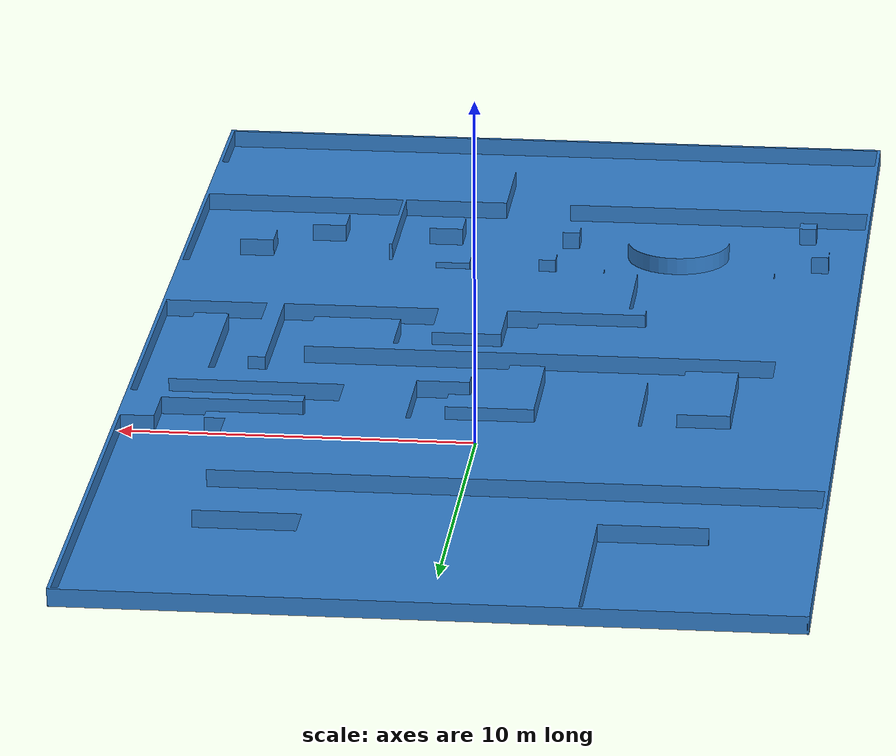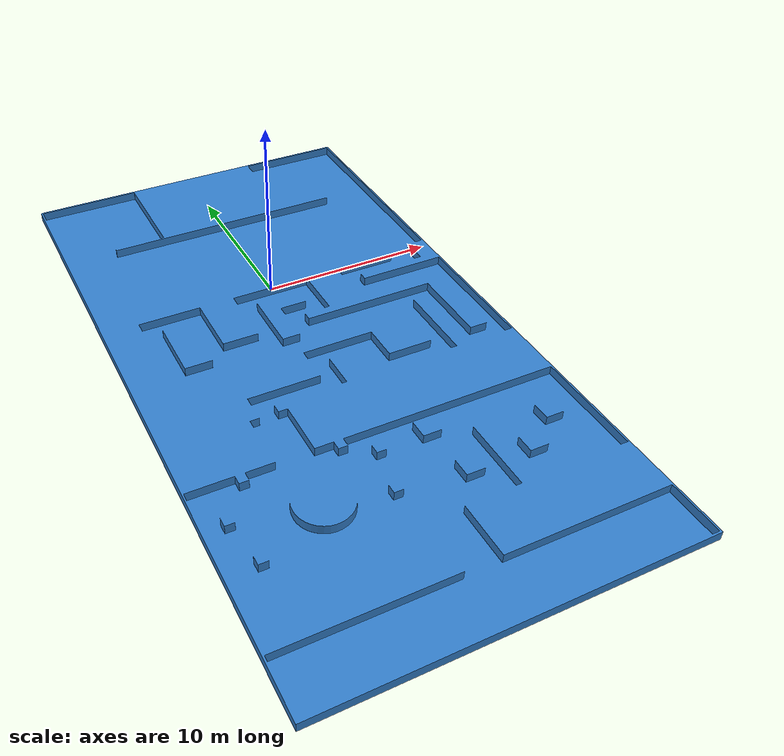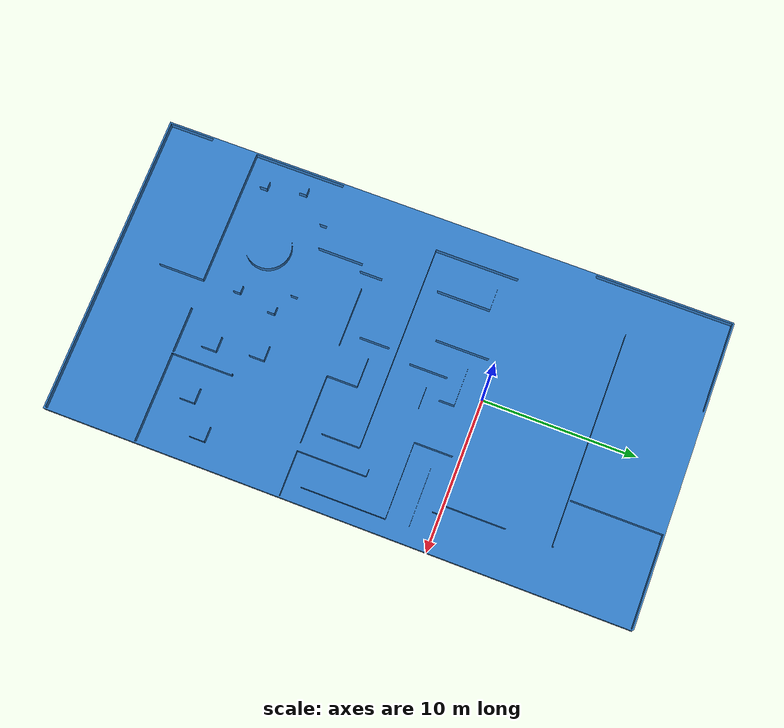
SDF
<?xml version='1.0' encoding='utf-8'?>
<sdf version="1.7">
  <world name="maze_world">

    <plugin filename="ignition-gazebo-physics-system"
            name="ignition::gazebo::systems::Physics"/>
    <plugin filename="ignition-gazebo-scene-broadcaster-system"
            name="ignition::gazebo::systems::SceneBroadcaster"/>
    <plugin filename="ignition-gazebo-user-commands-system"
            name="ignition::gazebo::systems::UserCommands"/>
    <plugin filename="ignition-gazebo-sensors-system"
            name="ignition::gazebo::systems::Sensors">
      <render_engine>ogre2</render_engine>
    </plugin>

    <light type="directional" name="sun">
      <cast_shadows>true</cast_shadows>
      <pose>0 0 10 0 0 0</pose>
      <diffuse>0.8 0.8 0.8 1</diffuse>
      <specular>0.2 0.2 0.2 1</specular>
      <direction>-0.5 0.1 -0.9</direction>
    </light>

    <model name="maze">
      <static>true</static>
      <link name="maze">
        <pose>0.0 0.0 0.0 0.0 -0.0 0.0</pose>
        <inertial>
          <mass>1404397.2018456978</mass>
          <pose>-0.6802931613918602 -5.429861107604283 0.24998929838238734 0.0 0.0 0.0</pose>
          <inertia>
            <ixx>135717071.70845324</ixx>
            <iyy>42596672.79889175</iyy>
            <izz>178255222.94761547</izz>
            <ixy>2554668.3133175243</ixy>
            <iyz>-8.568800903856754</iyz>
            <ixz>10.224344861722784</ixz>
          </inertia>
        </inertial>
        <visual name="maze_visual">
          <geometry>
            <mesh>
              <uri>package://mini_r1_v1_description/meshes/maze.stl</uri>
              <scale>0.001 0.001 0.001</scale>
            </mesh>
          </geometry>
          <material>
            <ambient>0.2 0.5 0.8 1</ambient>
            <diffuse>0.2 0.5 0.8 1</diffuse>
            <specular>0.1 0.1 0.1 1</specular>
          </material>
        </visual>
        <collision name="maze_collision">
          <geometry>
            <mesh>
              <uri>package://mini_r1_v1_description/meshes/maze.stl</uri>
              <scale>0.001 0.001 0.001</scale>
            </mesh>
          </geometry>
        </collision>
      </link>
    </model>

  </world>
</sdf>
